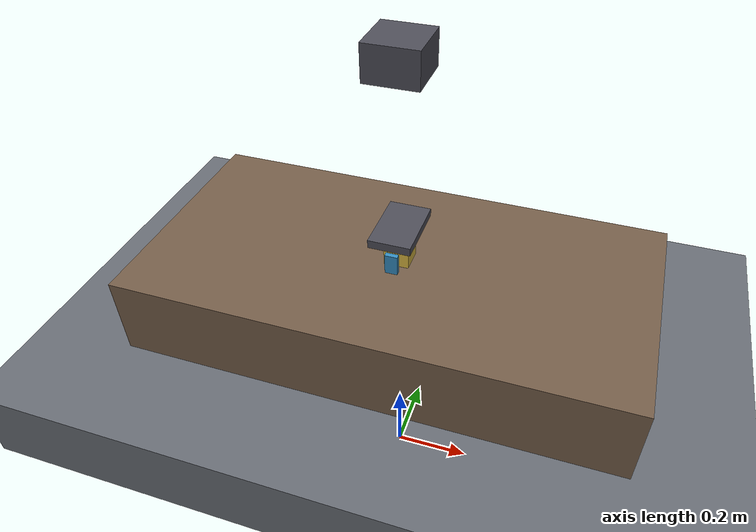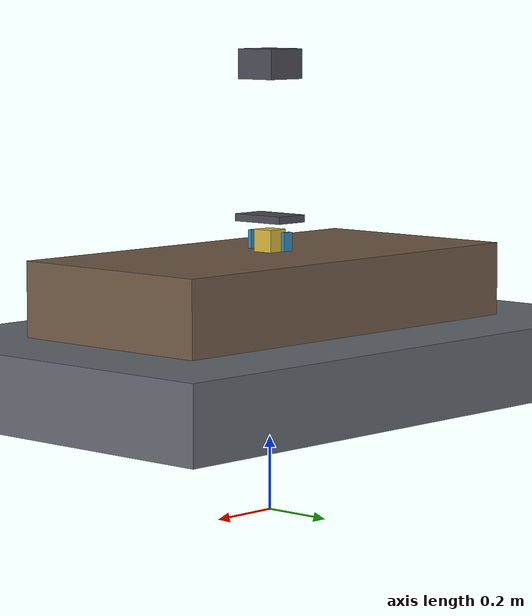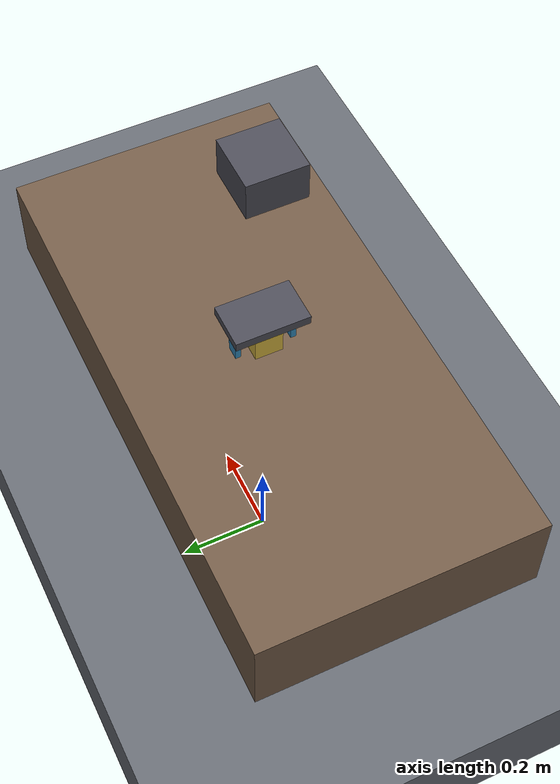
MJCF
<mujoco model="ladder0_rung8_mujoco">

  <!-- Only gravity and the timestep are set from the contract.  Everything
       else is MuJoCo's default, on purpose: this arm is the un-tuned
       reference for the solver OmniSim runs underneath. -->
  <option timestep="0.004" gravity="0 0 -9.81" noslip_iterations="5"/>

  <default>
    <!-- sliding / torsional / rolling.  condim defaults to 3, so only the
         first component is in force; the rest are declared for the record. -->
    <geom friction="3.0 0.005 0.0001"/>
  </default>

  <worldbody>
    <geom name="table" type="box" size="0.6 0.3 0.1" pos="0 0 0.6"
          rgba="0.45 0.36 0.28 1"/>
    <geom name="floor" type="box" size="10.0 10.0 0.1" pos="0 0 0.4"
          rgba="0.4 0.42 0.45 1"/>

    <!-- The part: a 0.06 m cube of 0.2 kg, resting on the table with
         its centre at z=0.73. -->
    <body name="part" pos="0 0 0.73">
      <freejoint name="part_free"/>
      <geom name="part_geom" type="box" size="0.03 0.03 0.03" mass="0.2"
            rgba="0.85 0.72 0.25 1"/>
    </body>

    <!-- Gantry.  Rail at z=1.2; the carriage traverses along X and the
         wrist lifts along Z.  At both joints' zero the wrist origin is at
         z=0.73, which is the part's centre. -->
    <body name="carriage" pos="0 0 1.2">
      <joint name="traverse" type="slide" axis="1 0 0"/>
      <geom name="carriage_geom" type="box" size="0.06 0.06 0.04"
            mass="1.0" rgba="0.3 0.3 0.34 1"/>
      <body name="wrist" pos="0 0 -0.47">
        <joint name="lift" type="slide" axis="0 0 1"/>
        <!-- The plate hangs 0.06 m above the wrist origin, so its
             underside clears the part's top by 0.020 m. -->
        <geom name="wrist_geom" type="box" size="0.05 0.08 0.01"
              pos="0 0 0.06" mass="0.2" rgba="0.3 0.3 0.34 1"/>

        <body name="pad_l" pos="0 0.06 0">
          <joint name="pad_l_joint" type="slide" axis="0 -1 0"
                 range="0 0.048000" damping="15.4919"/>
          <geom name="pad_l_geom" type="box" size="0.015 0.006 0.025"
                mass="0.02" rgba="0.2 0.55 0.75 1"/>
        </body>

        <body name="pad_r" pos="0 -0.06 0">
          <joint name="pad_r_joint" type="slide" axis="0 1 0"
                 range="0 0.048000" damping="15.4919"/>
          <geom name="pad_r_geom" type="box" size="0.015 0.006 0.025"
                mass="0.02" rgba="0.2 0.55 0.75 1"/>
        </body>
      </body>
    </body>
  </worldbody>

  <actuator>
    <position name="traverse_motor" joint="traverse" kp="1743.8976"
              kv="100.2240"/>
    <position name="lift_motor" joint="lift" kp="4316.4000" kv="87.1600"/>
    <position name="pad_l_motor" joint="pad_l_joint" kp="3000.0000" kv="0"/>
    <position name="pad_r_motor" joint="pad_r_joint" kp="3000.0000" kv="0"/>
  </actuator>

</mujoco>
